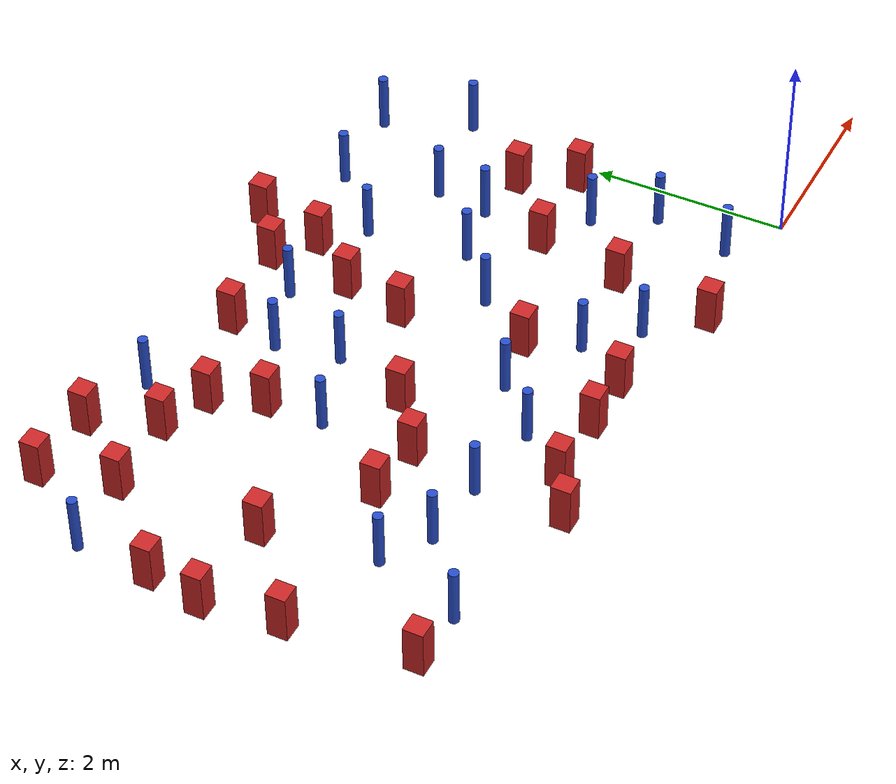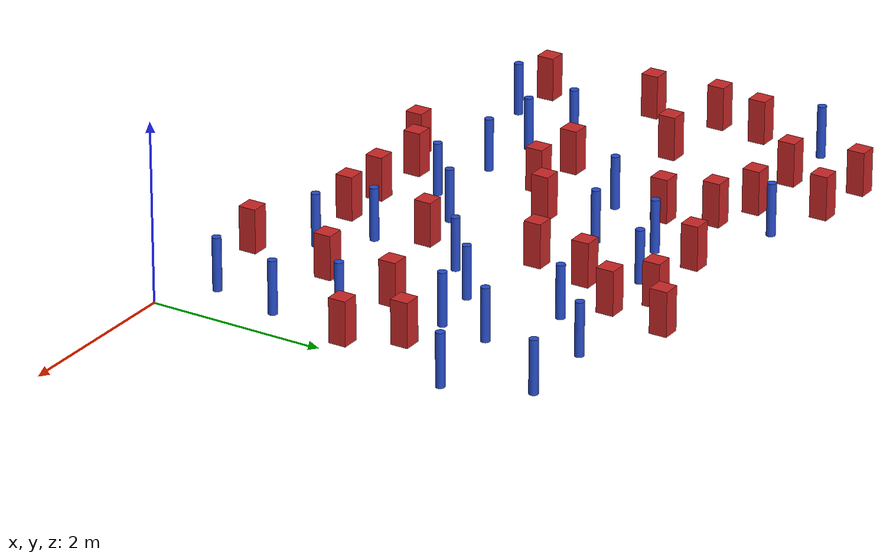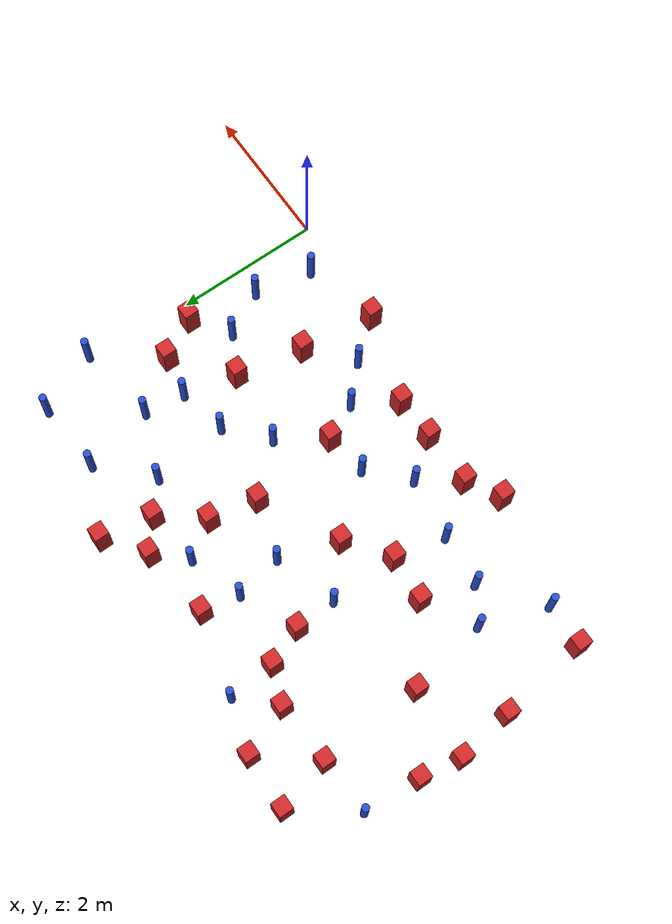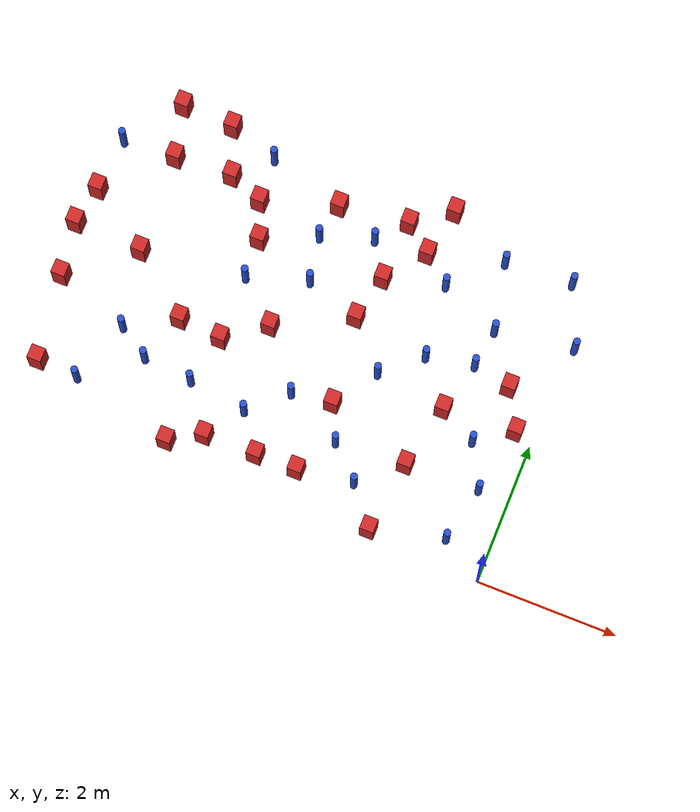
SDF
<sdf version="1.6">
 <model name="dense_65">
  <model name="square_post_obstacle1">
   <static>true</static>
   <pose>-0.560841671599 2.65041663907 8.22691968438e-08 7.2212513382e-06 -7.54495500217e-07 2.29674213826e-05</pose>
   <link name="link">
    <pose>0 0 0.25 0 -0 0</pose>
    <inertial>
     <mass>100</mass>
     <inertia>
      <ixx>0.166667</ixx>
      <ixy>0</ixy>
      <ixz>0</ixz>
      <iyy>0.166667</iyy>
      <iyz>0</iyz>
      <izz>0.166667</izz>
     </inertia>
    </inertial>
    <collision name="collision"><geometry><box><size>.2 .2 .5</size></box></geometry></collision>
    <visual name="visual">
     <geometry><box><size>.2 .2 .5</size></box></geometry>
     <material>
      <script><name>Gazebo/Red</name><uri>file://media/materials/scripts/gazebo.material</uri></script>
     </material>
    </visual>
   </link>
  </model>
  <model name="pole_obstacle8">
   <static>true</static>
   <pose>-2.48331928345 1.05033465094 2.88873142074e-08 -9.90536689395e-09 4.60219949e-07 -1.20965994953e-07</pose>
   <link name="link">
    <pose>0 0 0.3 0 -0 0</pose>
    <inertial>
     <mass>1</mass>
     <inertia><ixx>0.145833</ixx><ixy>0</ixy><ixz>0</ixz><iyy>0.145833</iyy><iyz>0</iyz><izz>0.125</izz></inertia>
    </inertial>
    <collision name="collision">
     <geometry><cylinder><radius>0.05</radius><length>.6</length></cylinder></geometry>
    </collision>
    <visual name="visual">
     <geometry><cylinder><radius>0.05</radius><length>.6</length></cylinder></geometry>
     <material>
      <script><name>Gazebo/Blue</name><uri>file://media/materials/scripts/gazebo.material</uri></script>
     </material>
    </visual>
   </link>
  </model>
  <model name="pole_obstacle9">
   <static>true</static>
   <pose>-3.30076019264 1.46445562812 2.88873142074e-08 -9.90536689395e-09 4.60219949e-07 -1.20965994953e-07</pose>
   <link name="link">
    <pose>0 0 0.3 0 -0 0</pose>
    <inertial>
     <mass>1</mass>
     <inertia><ixx>0.145833</ixx><ixy>0</ixy><ixz>0</ixz><iyy>0.145833</iyy><iyz>0</iyz><izz>0.125</izz></inertia>
    </inertial>
    <collision name="collision">
     <geometry><cylinder><radius>0.05</radius><length>.6</length></cylinder></geometry>
    </collision>
    <visual name="visual">
     <geometry><cylinder><radius>0.05</radius><length>.6</length></cylinder></geometry>
     <material>
      <script><name>Gazebo/Blue</name><uri>file://media/materials/scripts/gazebo.material</uri></script>
     </material>
    </visual>
   </link>
  </model>
  <model name="square_post_obstacle11">
   <static>true</static>
   <pose>-6.88948237772 3.19168750568 8.22691968438e-08 7.2212513382e-06 -7.54495500217e-07 2.29674213826e-05</pose>
   <link name="link">
    <pose>0 0 0.25 0 -0 0</pose>
    <inertial>
     <mass>100</mass>
     <inertia>
      <ixx>0.166667</ixx>
      <ixy>0</ixy>
      <ixz>0</ixz>
      <iyy>0.166667</iyy>
      <iyz>0</iyz>
      <izz>0.166667</izz>
     </inertia>
    </inertial>
    <collision name="collision"><geometry><box><size>.2 .2 .5</size></box></geometry></collision>
    <visual name="visual">
     <geometry><box><size>.2 .2 .5</size></box></geometry>
     <material>
      <script><name>Gazebo/Red</name><uri>file://media/materials/scripts/gazebo.material</uri></script>
     </material>
    </visual>
   </link>
  </model>
  <model name="square_post_obstacle16">
   <static>true</static>
   <pose>-3.680123788 4.19438872389 8.22691968438e-08 7.2212513382e-06 -7.54495500217e-07 2.29674213826e-05</pose>
   <link name="link">
    <pose>0 0 0.25 0 -0 0</pose>
    <inertial>
     <mass>100</mass>
     <inertia>
      <ixx>0.166667</ixx>
      <ixy>0</ixy>
      <ixz>0</ixz>
      <iyy>0.166667</iyy>
      <iyz>0</iyz>
      <izz>0.166667</izz>
     </inertia>
    </inertial>
    <collision name="collision"><geometry><box><size>.2 .2 .5</size></box></geometry></collision>
    <visual name="visual">
     <geometry><box><size>.2 .2 .5</size></box></geometry>
     <material>
      <script><name>Gazebo/Red</name><uri>file://media/materials/scripts/gazebo.material</uri></script>
     </material>
    </visual>
   </link>
  </model>
  <model name="pole_obstacle24">
   <static>true</static>
   <pose>-2.304319869 2.16145580614 2.88873142074e-08 -9.90536690232e-09 4.6021994898e-07 -1.20965994968e-07</pose>
   <link name="link">
    <pose>0 0 0.3 0 -0 0</pose>
    <inertial>
     <mass>1</mass>
     <inertia><ixx>0.145833</ixx><ixy>0</ixy><ixz>0</ixz><iyy>0.145833</iyy><iyz>0</iyz><izz>0.125</izz></inertia>
    </inertial>
    <collision name="collision">
     <geometry><cylinder><radius>0.05</radius><length>.6</length></cylinder></geometry>
    </collision>
    <visual name="visual">
     <geometry><cylinder><radius>0.05</radius><length>.6</length></cylinder></geometry>
     <material>
      <script><name>Gazebo/Blue</name><uri>file://media/materials/scripts/gazebo.material</uri></script>
     </material>
    </visual>
   </link>
  </model>
  <model name="pole_obstacle29">
   <static>true</static>
   <pose>-4.64463714561 1.11420730306 2.88873142074e-08 -9.90536689445e-09 4.60219948999e-07 -1.20965994956e-07</pose>
   <link name="link">
    <pose>0 0 0.3 0 -0 0</pose>
    <inertial>
     <mass>1</mass>
     <inertia><ixx>0.145833</ixx><ixy>0</ixy><ixz>0</ixz><iyy>0.145833</iyy><iyz>0</iyz><izz>0.125</izz></inertia>
    </inertial>
    <collision name="collision">
     <geometry><cylinder><radius>0.05</radius><length>.6</length></cylinder></geometry>
    </collision>
    <visual name="visual">
     <geometry><cylinder><radius>0.05</radius><length>.6</length></cylinder></geometry>
     <material>
      <script><name>Gazebo/Blue</name><uri>file://media/materials/scripts/gazebo.material</uri></script>
     </material>
    </visual>
   </link>
  </model>
  <model name="square_post_obstacle21">
   <static>true</static>
   <pose>-2.83876542974 0.504566178584 8.22691968438e-08 7.2212513382e-06 -7.54495500217e-07 2.29674213826e-05</pose>
   <link name="link">
    <pose>0 0 0.25 0 -0 0</pose>
    <inertial>
     <mass>100</mass>
     <inertia>
      <ixx>0.166667</ixx>
      <ixy>0</ixy>
      <ixz>0</ixz>
      <iyy>0.166667</iyy>
      <iyz>0</iyz>
      <izz>0.166667</izz>
     </inertia>
    </inertial>
    <collision name="collision"><geometry><box><size>.2 .2 .5</size></box></geometry></collision>
    <visual name="visual">
     <geometry><box><size>.2 .2 .5</size></box></geometry>
     <material>
      <script><name>Gazebo/Red</name><uri>file://media/materials/scripts/gazebo.material</uri></script>
     </material>
    </visual>
   </link>
  </model>
  <model name="square_post_obstacle26">
   <static>true</static>
   <pose>-2.87410063419 2.79433971176 8.22691968438e-08 7.2212513382e-06 -7.54495500217e-07 2.29674213826e-05</pose>
   <link name="link">
    <pose>0 0 0.25 0 -0 0</pose>
    <inertial>
     <mass>100</mass>
     <inertia>
      <ixx>0.166667</ixx>
      <ixy>0</ixy>
      <ixz>0</ixz>
      <iyy>0.166667</iyy>
      <iyz>0</iyz>
      <izz>0.166667</izz>
     </inertia>
    </inertial>
    <collision name="collision"><geometry><box><size>.2 .2 .5</size></box></geometry></collision>
    <visual name="visual">
     <geometry><box><size>.2 .2 .5</size></box></geometry>
     <material>
      <script><name>Gazebo/Red</name><uri>file://media/materials/scripts/gazebo.material</uri></script>
     </material>
    </visual>
   </link>
  </model>
  <model name="pole_obstacle33">
   <static>true</static>
   <pose>-1.88882830112 3.67111143473 2.88873142074e-08 -9.90536689791e-09 4.6021994899e-07 -1.20965994959e-07</pose>
   <link name="link">
    <pose>0 0 0.3 0 -0 0</pose>
    <inertial>
     <mass>1</mass>
     <inertia><ixx>0.145833</ixx><ixy>0</ixy><ixz>0</ixz><iyy>0.145833</iyy><iyz>0</iyz><izz>0.125</izz></inertia>
    </inertial>
    <collision name="collision">
     <geometry><cylinder><radius>0.05</radius><length>.6</length></cylinder></geometry>
    </collision>
    <visual name="visual">
     <geometry><cylinder><radius>0.05</radius><length>.6</length></cylinder></geometry>
     <material>
      <script><name>Gazebo/Blue</name><uri>file://media/materials/scripts/gazebo.material</uri></script>
     </material>
    </visual>
   </link>
  </model>
  <model name="square_post_obstacle33">
   <static>true</static>
   <pose>-3.92741275039 2.24414399379 8.22691968438e-08 7.2212513382e-06 -7.54495500217e-07 2.29674213826e-05</pose>
   <link name="link">
    <pose>0 0 0.25 0 -0 0</pose>
    <inertial>
     <mass>100</mass>
     <inertia>
      <ixx>0.166667</ixx>
      <ixy>0</ixy>
      <ixz>0</ixz>
      <iyy>0.166667</iyy>
      <iyz>0</iyz>
      <izz>0.166667</izz>
     </inertia>
    </inertial>
    <collision name="collision"><geometry><box><size>.2 .2 .5</size></box></geometry></collision>
    <visual name="visual">
     <geometry><box><size>.2 .2 .5</size></box></geometry>
     <material>
      <script><name>Gazebo/Red</name><uri>file://media/materials/scripts/gazebo.material</uri></script>
     </material>
    </visual>
   </link>
  </model>
  <model name="square_post_obstacle37">
   <static>true</static>
   <pose>-4.73279522906 3.85065306211 8.22691968438e-08 7.2212513382e-06 -7.54495500217e-07 2.29674213826e-05</pose>
   <link name="link">
    <pose>0 0 0.25 0 -0 0</pose>
    <inertial>
     <mass>100</mass>
     <inertia>
      <ixx>0.166667</ixx>
      <ixy>0</ixy>
      <ixz>0</ixz>
      <iyy>0.166667</iyy>
      <iyz>0</iyz>
      <izz>0.166667</izz>
     </inertia>
    </inertial>
    <collision name="collision"><geometry><box><size>.2 .2 .5</size></box></geometry></collision>
    <visual name="visual">
     <geometry><box><size>.2 .2 .5</size></box></geometry>
     <material>
      <script><name>Gazebo/Red</name><uri>file://media/materials/scripts/gazebo.material</uri></script>
     </material>
    </visual>
   </link>
  </model>
  <model name="pole_obstacle50">
   <static>true</static>
   <pose>-6.83363723945 3.96718415108 2.88873142074e-08 -9.9053669014e-09 4.60219948982e-07 -1.20965994965e-07</pose>
   <link name="link">
    <pose>0 0 0.3 0 -0 0</pose>
    <inertial>
     <mass>1</mass>
     <inertia><ixx>0.145833</ixx><ixy>0</ixy><ixz>0</ixz><iyy>0.145833</iyy><iyz>0</iyz><izz>0.125</izz></inertia>
    </inertial>
    <collision name="collision">
     <geometry><cylinder><radius>0.05</radius><length>.6</length></cylinder></geometry>
    </collision>
    <visual name="visual">
     <geometry><cylinder><radius>0.05</radius><length>.6</length></cylinder></geometry>
     <material>
      <script><name>Gazebo/Blue</name><uri>file://media/materials/scripts/gazebo.material</uri></script>
     </material>
    </visual>
   </link>
  </model>
  <model name="square_post_obstacle46">
   <static>true</static>
   <pose>-5.11732606859 1.87885073688 8.22691968438e-08 7.2212513382e-06 -7.54495500217e-07 2.29674213826e-05</pose>
   <link name="link">
    <pose>0 0 0.25 0 -0 0</pose>
    <inertial>
     <mass>100</mass>
     <inertia>
      <ixx>0.166667</ixx>
      <ixy>0</ixy>
      <ixz>0</ixz>
      <iyy>0.166667</iyy>
      <iyz>0</iyz>
      <izz>0.166667</izz>
     </inertia>
    </inertial>
    <collision name="collision"><geometry><box><size>.2 .2 .5</size></box></geometry></collision>
    <visual name="visual">
     <geometry><box><size>.2 .2 .5</size></box></geometry>
     <material>
      <script><name>Gazebo/Red</name><uri>file://media/materials/scripts/gazebo.material</uri></script>
     </material>
    </visual>
   </link>
  </model>
  <model name="pole_obstacle63">
   <static>true</static>
   <pose>-4.50645721522 2.76461307979 2.88873142074e-08 -9.90536690245e-09 4.6021994898e-07 -1.20965994966e-07</pose>
   <link name="link">
    <pose>0 0 0.3 0 -0 0</pose>
    <inertial>
     <mass>1</mass>
     <inertia><ixx>0.145833</ixx><ixy>0</ixy><ixz>0</ixz><iyy>0.145833</iyy><iyz>0</iyz><izz>0.125</izz></inertia>
    </inertial>
    <collision name="collision">
     <geometry><cylinder><radius>0.05</radius><length>.6</length></cylinder></geometry>
    </collision>
    <visual name="visual">
     <geometry><cylinder><radius>0.05</radius><length>.6</length></cylinder></geometry>
     <material>
      <script><name>Gazebo/Blue</name><uri>file://media/materials/scripts/gazebo.material</uri></script>
     </material>
    </visual>
   </link>
  </model>
  <model name="pole_obstacle65">
   <static>true</static>
   <pose>-1.77916049019 2.62491850262 2.88873142074e-08 -9.90536689791e-09 4.6021994899e-07 -1.20965994959e-07</pose>
   <link name="link">
    <pose>0 0 0.3 0 -0 0</pose>
    <inertial>
     <mass>1</mass>
     <inertia><ixx>0.145833</ixx><ixy>0</ixy><ixz>0</ixz><iyy>0.145833</iyy><iyz>0</iyz><izz>0.125</izz></inertia>
    </inertial>
    <collision name="collision">
     <geometry><cylinder><radius>0.05</radius><length>.6</length></cylinder></geometry>
    </collision>
    <visual name="visual">
     <geometry><cylinder><radius>0.05</radius><length>.6</length></cylinder></geometry>
     <material>
      <script><name>Gazebo/Blue</name><uri>file://media/materials/scripts/gazebo.material</uri></script>
     </material>
    </visual>
   </link>
  </model>
  <model name="pole_obstacle67">
   <static>true</static>
   <pose>-6.11617109913 0.585693611447 2.88873142074e-08 -9.90536689837e-09 4.60219948989e-07 -1.2096599496e-07</pose>
   <link name="link">
    <pose>0 0 0.3 0 -0 0</pose>
    <inertial>
     <mass>1</mass>
     <inertia><ixx>0.145833</ixx><ixy>0</ixy><ixz>0</ixz><iyy>0.145833</iyy><iyz>0</iyz><izz>0.125</izz></inertia>
    </inertial>
    <collision name="collision">
     <geometry><cylinder><radius>0.05</radius><length>.6</length></cylinder></geometry>
    </collision>
    <visual name="visual">
     <geometry><cylinder><radius>0.05</radius><length>.6</length></cylinder></geometry>
     <material>
      <script><name>Gazebo/Blue</name><uri>file://media/materials/scripts/gazebo.material</uri></script>
     </material>
    </visual>
   </link>
  </model>
  <model name="square_post_obstacle56">
   <static>true</static>
   <pose>-6.98311634448 2.62640199725 8.22691968438e-08 7.2212513382e-06 -7.54495500217e-07 2.29674213826e-05</pose>
   <link name="link">
    <pose>0 0 0.25 0 -0 0</pose>
    <inertial>
     <mass>100</mass>
     <inertia>
      <ixx>0.166667</ixx>
      <ixy>0</ixy>
      <ixz>0</ixz>
      <iyy>0.166667</iyy>
      <iyz>0</iyz>
      <izz>0.166667</izz>
     </inertia>
    </inertial>
    <collision name="collision"><geometry><box><size>.2 .2 .5</size></box></geometry></collision>
    <visual name="visual">
     <geometry><box><size>.2 .2 .5</size></box></geometry>
     <material>
      <script><name>Gazebo/Red</name><uri>file://media/materials/scripts/gazebo.material</uri></script>
     </material>
    </visual>
   </link>
  </model>
  <model name="pole_obstacle77">
   <static>true</static>
   <pose>0.0829624721579 3.48288292947 2.88873142074e-08 -9.90536689907e-09 4.60219948988e-07 -1.20965994961e-07</pose>
   <link name="link">
    <pose>0 0 0.3 0 -0 0</pose>
    <inertial>
     <mass>1</mass>
     <inertia><ixx>0.145833</ixx><ixy>0</ixy><ixz>0</ixz><iyy>0.145833</iyy><iyz>0</iyz><izz>0.125</izz></inertia>
    </inertial>
    <collision name="collision">
     <geometry><cylinder><radius>0.05</radius><length>.6</length></cylinder></geometry>
    </collision>
    <visual name="visual">
     <geometry><cylinder><radius>0.05</radius><length>.6</length></cylinder></geometry>
     <material>
      <script><name>Gazebo/Blue</name><uri>file://media/materials/scripts/gazebo.material</uri></script>
     </material>
    </visual>
   </link>
  </model>
  <model name="square_post_obstacle66">
   <static>true</static>
   <pose>-4.49617403517 1.82604715958 8.22691968438e-08 7.2212513382e-06 -7.54495500217e-07 2.29674213826e-05</pose>
   <link name="link">
    <pose>0 0 0.25 0 -0 0</pose>
    <inertial>
     <mass>100</mass>
     <inertia>
      <ixx>0.166667</ixx>
      <ixy>0</ixy>
      <ixz>0</ixz>
      <iyy>0.166667</iyy>
      <iyz>0</iyz>
      <izz>0.166667</izz>
     </inertia>
    </inertial>
    <collision name="collision"><geometry><box><size>.2 .2 .5</size></box></geometry></collision>
    <visual name="visual">
     <geometry><box><size>.2 .2 .5</size></box></geometry>
     <material>
      <script><name>Gazebo/Red</name><uri>file://media/materials/scripts/gazebo.material</uri></script>
     </material>
    </visual>
   </link>
  </model>
  <model name="square_post_obstacle69">
   <static>true</static>
   <pose>-5.48660990155 4.71626903176 8.22691968438e-08 7.22125133819e-06 -7.54495500217e-07 2.29674213826e-05</pose>
   <link name="link">
    <pose>0 0 0.25 0 -0 0</pose>
    <inertial>
     <mass>100</mass>
     <inertia>
      <ixx>0.166667</ixx>
      <ixy>0</ixy>
      <ixz>0</ixz>
      <iyy>0.166667</iyy>
      <iyz>0</iyz>
      <izz>0.166667</izz>
     </inertia>
    </inertial>
    <collision name="collision"><geometry><box><size>.2 .2 .5</size></box></geometry></collision>
    <visual name="visual">
     <geometry><box><size>.2 .2 .5</size></box></geometry>
     <material>
      <script><name>Gazebo/Red</name><uri>file://media/materials/scripts/gazebo.material</uri></script>
     </material>
    </visual>
   </link>
  </model>
  <model name="pole_obstacle81">
   <static>true</static>
   <pose>-5.80731462332 1.47958272403 2.88873142074e-08 -9.90536689445e-09 4.60219948999e-07 -1.20965994956e-07</pose>
   <link name="link">
    <pose>0 0 0.3 0 -0 0</pose>
    <inertial>
     <mass>1</mass>
     <inertia><ixx>0.145833</ixx><ixy>0</ixy><ixz>0</ixz><iyy>0.145833</iyy><iyz>0</iyz><izz>0.125</izz></inertia>
    </inertial>
    <collision name="collision">
     <geometry><cylinder><radius>0.05</radius><length>.6</length></cylinder></geometry>
    </collision>
    <visual name="visual">
     <geometry><cylinder><radius>0.05</radius><length>.6</length></cylinder></geometry>
     <material>
      <script><name>Gazebo/Blue</name><uri>file://media/materials/scripts/gazebo.material</uri></script>
     </material>
    </visual>
   </link>
  </model>
  <model name="square_post_obstacle79">
   <static>true</static>
   <pose>-2.29300067203 4.00698000335 8.22691968438e-08 7.22125133819e-06 -7.54495500217e-07 2.29674213826e-05</pose>
   <link name="link">
    <pose>0 0 0.25 0 -0 0</pose>
    <inertial>
     <mass>100</mass>
     <inertia>
      <ixx>0.166667</ixx>
      <ixy>0</ixy>
      <ixz>0</ixz>
      <iyy>0.166667</iyy>
      <iyz>0</iyz>
      <izz>0.166667</izz>
     </inertia>
    </inertial>
    <collision name="collision"><geometry><box><size>.2 .2 .5</size></box></geometry></collision>
    <visual name="visual">
     <geometry><box><size>.2 .2 .5</size></box></geometry>
     <material>
      <script><name>Gazebo/Red</name><uri>file://media/materials/scripts/gazebo.material</uri></script>
     </material>
    </visual>
   </link>
  </model>
  <model name="pole_obstacle90">
   <static>true</static>
   <pose>-0.271523865402 4.33994678662 2.88873142074e-08 -9.90536689618e-09 4.60219948994e-07 -1.20965994956e-07</pose>
   <link name="link">
    <pose>0 0 0.3 0 -0 0</pose>
    <inertial>
     <mass>1</mass>
     <inertia><ixx>0.145833</ixx><ixy>0</ixy><ixz>0</ixz><iyy>0.145833</iyy><iyz>0</iyz><izz>0.125</izz></inertia>
    </inertial>
    <collision name="collision">
     <geometry><cylinder><radius>0.05</radius><length>.6</length></cylinder></geometry>
    </collision>
    <visual name="visual">
     <geometry><cylinder><radius>0.05</radius><length>.6</length></cylinder></geometry>
     <material>
      <script><name>Gazebo/Blue</name><uri>file://media/materials/scripts/gazebo.material</uri></script>
     </material>
    </visual>
   </link>
  </model>
  <model name="square_post_obstacle86">
   <static>true</static>
   <pose>-5.99710301955 2.5825157316 8.22691968438e-08 7.2212513382e-06 -7.54495500217e-07 2.29674213826e-05</pose>
   <link name="link">
    <pose>0 0 0.25 0 -0 0</pose>
    <inertial>
     <mass>100</mass>
     <inertia>
      <ixx>0.166667</ixx>
      <ixy>0</ixy>
      <ixz>0</ixz>
      <iyy>0.166667</iyy>
      <iyz>0</iyz>
      <izz>0.166667</izz>
     </inertia>
    </inertial>
    <collision name="collision"><geometry><box><size>.2 .2 .5</size></box></geometry></collision>
    <visual name="visual">
     <geometry><box><size>.2 .2 .5</size></box></geometry>
     <material>
      <script><name>Gazebo/Red</name><uri>file://media/materials/scripts/gazebo.material</uri></script>
     </material>
    </visual>
   </link>
  </model>
  <model name="square_post_obstacle87">
   <static>true</static>
   <pose>-6.24336735413 4.74969634615 8.22691968438e-08 7.2212513382e-06 -7.54495500217e-07 2.29674213826e-05</pose>
   <link name="link">
    <pose>0 0 0.25 0 -0 0</pose>
    <inertial>
     <mass>100</mass>
     <inertia>
      <ixx>0.166667</ixx>
      <ixy>0</ixy>
      <ixz>0</ixz>
      <iyy>0.166667</iyy>
      <iyz>0</iyz>
      <izz>0.166667</izz>
     </inertia>
    </inertial>
    <collision name="collision"><geometry><box><size>.2 .2 .5</size></box></geometry></collision>
    <visual name="visual">
     <geometry><box><size>.2 .2 .5</size></box></geometry>
     <material>
      <script><name>Gazebo/Red</name><uri>file://media/materials/scripts/gazebo.material</uri></script>
     </material>
    </visual>
   </link>
  </model>
  <model name="pole_obstacle99">
   <static>true</static>
   <pose>-0.596337712867 0.363008030687 2.88873142074e-08 -9.90536689558e-09 4.60219948996e-07 -1.20965994957e-07</pose>
   <link name="link">
    <pose>0 0 0.3 0 -0 0</pose>
    <inertial>
     <mass>1</mass>
     <inertia><ixx>0.145833</ixx><ixy>0</ixy><ixz>0</ixz><iyy>0.145833</iyy><iyz>0</iyz><izz>0.125</izz></inertia>
    </inertial>
    <collision name="collision">
     <geometry><cylinder><radius>0.05</radius><length>.6</length></cylinder></geometry>
    </collision>
    <visual name="visual">
     <geometry><cylinder><radius>0.05</radius><length>.6</length></cylinder></geometry>
     <material>
      <script><name>Gazebo/Blue</name><uri>file://media/materials/scripts/gazebo.material</uri></script>
     </material>
    </visual>
   </link>
  </model>
  <model name="square_post_obstacle95">
   <static>true</static>
   <pose>-6.70617805163 0.626951596238 8.22691968438e-08 7.2212513382e-06 -7.54495500217e-07 2.29674213826e-05</pose>
   <link name="link">
    <pose>0 0 0.25 0 -0 0</pose>
    <inertial>
     <mass>100</mass>
     <inertia>
      <ixx>0.166667</ixx>
      <ixy>0</ixy>
      <ixz>0</ixz>
      <iyy>0.166667</iyy>
      <iyz>0</iyz>
      <izz>0.166667</izz>
     </inertia>
    </inertial>
    <collision name="collision"><geometry><box><size>.2 .2 .5</size></box></geometry></collision>
    <visual name="visual">
     <geometry><box><size>.2 .2 .5</size></box></geometry>
     <material>
      <script><name>Gazebo/Red</name><uri>file://media/materials/scripts/gazebo.material</uri></script>
     </material>
    </visual>
   </link>
  </model>
  <model name="pole_obstacle106">
   <static>true</static>
   <pose>-0.753810290325 1.74890264447 2.88873142074e-08 -9.90536689855e-09 4.60219948989e-07 -1.20965994962e-07</pose>
   <link name="link">
    <pose>0 0 0.3 0 -0 0</pose>
    <inertial>
     <mass>1</mass>
     <inertia><ixx>0.145833</ixx><ixy>0</ixy><ixz>0</ixz><iyy>0.145833</iyy><iyz>0</iyz><izz>0.125</izz></inertia>
    </inertial>
    <collision name="collision">
     <geometry><cylinder><radius>0.05</radius><length>.6</length></cylinder></geometry>
    </collision>
    <visual name="visual">
     <geometry><cylinder><radius>0.05</radius><length>.6</length></cylinder></geometry>
     <material>
      <script><name>Gazebo/Blue</name><uri>file://media/materials/scripts/gazebo.material</uri></script>
     </material>
    </visual>
   </link>
  </model>
  <model name="pole_obstacle107">
   <static>true</static>
   <pose>-5.35539447719 1.17975356388 2.88873142074e-08 -9.90536689445e-09 4.60219948999e-07 -1.20965994956e-07</pose>
   <link name="link">
    <pose>0 0 0.3 0 -0 0</pose>
    <inertial>
     <mass>1</mass>
     <inertia><ixx>0.145833</ixx><ixy>0</ixy><ixz>0</ixz><iyy>0.145833</iyy><iyz>0</iyz><izz>0.125</izz></inertia>
    </inertial>
    <collision name="collision">
     <geometry><cylinder><radius>0.05</radius><length>.6</length></cylinder></geometry>
    </collision>
    <visual name="visual">
     <geometry><cylinder><radius>0.05</radius><length>.6</length></cylinder></geometry>
     <material>
      <script><name>Gazebo/Blue</name><uri>file://media/materials/scripts/gazebo.material</uri></script>
     </material>
    </visual>
   </link>
  </model>
  <model name="square_post_obstacle108">
   <static>true</static>
   <pose>-1.29280418347 2.03772372093 8.22691968438e-08 7.2212513382e-06 -7.54495500217e-07 2.29674213826e-05</pose>
   <link name="link">
    <pose>0 0 0.25 0 -0 0</pose>
    <inertial>
     <mass>100</mass>
     <inertia>
      <ixx>0.166667</ixx>
      <ixy>0</ixy>
      <ixz>0</ixz>
      <iyy>0.166667</iyy>
      <iyz>0</iyz>
      <izz>0.166667</izz>
     </inertia>
    </inertial>
    <collision name="collision"><geometry><box><size>.2 .2 .5</size></box></geometry></collision>
    <visual name="visual">
     <geometry><box><size>.2 .2 .5</size></box></geometry>
     <material>
      <script><name>Gazebo/Red</name><uri>file://media/materials/scripts/gazebo.material</uri></script>
     </material>
    </visual>
   </link>
  </model>
  <model name="pole_obstacle116">
   <static>true</static>
   <pose>-3.04149800342 3.92216286845 2.88873142074e-08 -9.90536689597e-09 4.60219948995e-07 -1.20965994957e-07</pose>
   <link name="link">
    <pose>0 0 0.3 0 -0 0</pose>
    <inertial>
     <mass>1</mass>
     <inertia><ixx>0.145833</ixx><ixy>0</ixy><ixz>0</ixz><iyy>0.145833</iyy><iyz>0</iyz><izz>0.125</izz></inertia>
    </inertial>
    <collision name="collision">
     <geometry><cylinder><radius>0.05</radius><length>.6</length></cylinder></geometry>
    </collision>
    <visual name="visual">
     <geometry><cylinder><radius>0.05</radius><length>.6</length></cylinder></geometry>
     <material>
      <script><name>Gazebo/Blue</name><uri>file://media/materials/scripts/gazebo.material</uri></script>
     </material>
    </visual>
   </link>
  </model>
  <model name="square_post_obstacle116">
   <static>true</static>
   <pose>-5.22801478074 4.05010147433 8.22691968438e-08 7.22125133819e-06 -7.54495500217e-07 2.29674213826e-05</pose>
   <link name="link">
    <pose>0 0 0.25 0 -0 0</pose>
    <inertial>
     <mass>100</mass>
     <inertia>
      <ixx>0.166667</ixx>
      <ixy>0</ixy>
      <ixz>0</ixz>
      <iyy>0.166667</iyy>
      <iyz>0</iyz>
      <izz>0.166667</izz>
     </inertia>
    </inertial>
    <collision name="collision"><geometry><box><size>.2 .2 .5</size></box></geometry></collision>
    <visual name="visual">
     <geometry><box><size>.2 .2 .5</size></box></geometry>
     <material>
      <script><name>Gazebo/Red</name><uri>file://media/materials/scripts/gazebo.material</uri></script>
     </material>
    </visual>
   </link>
  </model>
  <model name="square_post_obstacle128">
   <static>true</static>
   <pose>-2.1533951759 4.71017432588 8.22691968438e-08 7.2212513382e-06 -7.54495500217e-07 2.29674213826e-05</pose>
   <link name="link">
    <pose>0 0 0.25 0 -0 0</pose>
    <inertial>
     <mass>100</mass>
     <inertia>
      <ixx>0.166667</ixx>
      <ixy>0</ixy>
      <ixz>0</ixz>
      <iyy>0.166667</iyy>
      <iyz>0</iyz>
      <izz>0.166667</izz>
     </inertia>
    </inertial>
    <collision name="collision"><geometry><box><size>.2 .2 .5</size></box></geometry></collision>
    <visual name="visual">
     <geometry><box><size>.2 .2 .5</size></box></geometry>
     <material>
      <script><name>Gazebo/Red</name><uri>file://media/materials/scripts/gazebo.material</uri></script>
     </material>
    </visual>
   </link>
  </model>
  <model name="square_post_obstacle130">
   <static>true</static>
   <pose>-6.87564008628 1.85827465387 8.22691968438e-08 7.2212513382e-06 -7.54495500217e-07 2.29674213826e-05</pose>
   <link name="link">
    <pose>0 0 0.25 0 -0 0</pose>
    <inertial>
     <mass>100</mass>
     <inertia>
      <ixx>0.166667</ixx>
      <ixy>0</ixy>
      <ixz>0</ixz>
      <iyy>0.166667</iyy>
      <iyz>0</iyz>
      <izz>0.166667</izz>
     </inertia>
    </inertial>
    <collision name="collision"><geometry><box><size>.2 .2 .5</size></box></geometry></collision>
    <visual name="visual">
     <geometry><box><size>.2 .2 .5</size></box></geometry>
     <material>
      <script><name>Gazebo/Red</name><uri>file://media/materials/scripts/gazebo.material</uri></script>
     </material>
    </visual>
   </link>
  </model>
  <model name="pole_obstacle136">
   <static>true</static>
   <pose>-0.432453640294 1.1540847777 2.88873142074e-08 -9.90536689905e-09 4.60219948988e-07 -1.2096599496e-07</pose>
   <link name="link">
    <pose>0 0 0.3 0 -0 0</pose>
    <inertial>
     <mass>1</mass>
     <inertia><ixx>0.145833</ixx><ixy>0</ixy><ixz>0</ixz><iyy>0.145833</iyy><iyz>0</iyz><izz>0.125</izz></inertia>
    </inertial>
    <collision name="collision">
     <geometry><cylinder><radius>0.05</radius><length>.6</length></cylinder></geometry>
    </collision>
    <visual name="visual">
     <geometry><cylinder><radius>0.05</radius><length>.6</length></cylinder></geometry>
     <material>
      <script><name>Gazebo/Blue</name><uri>file://media/materials/scripts/gazebo.material</uri></script>
     </material>
    </visual>
   </link>
  </model>
  <model name="square_post_obstacle133">
   <static>true</static>
   <pose>-2.72436295108 1.55125231874 8.22691968438e-08 7.2212513382e-06 -7.54495500217e-07 2.29674213826e-05</pose>
   <link name="link">
    <pose>0 0 0.25 0 -0 0</pose>
    <inertial>
     <mass>100</mass>
     <inertia>
      <ixx>0.166667</ixx>
      <ixy>0</ixy>
      <ixz>0</ixz>
      <iyy>0.166667</iyy>
      <iyz>0</iyz>
      <izz>0.166667</izz>
     </inertia>
    </inertial>
    <collision name="collision"><geometry><box><size>.2 .2 .5</size></box></geometry></collision>
    <visual name="visual">
     <geometry><box><size>.2 .2 .5</size></box></geometry>
     <material>
      <script><name>Gazebo/Red</name><uri>file://media/materials/scripts/gazebo.material</uri></script>
     </material>
    </visual>
   </link>
  </model>
  <model name="square_post_obstacle134">
   <static>true</static>
   <pose>-1.48688407146 1.12268765484 8.22691968438e-08 7.2212513382e-06 -7.54495500217e-07 2.29674213826e-05</pose>
   <link name="link">
    <pose>0 0 0.25 0 -0 0</pose>
    <inertial>
     <mass>100</mass>
     <inertia>
      <ixx>0.166667</ixx>
      <ixy>0</ixy>
      <ixz>0</ixz>
      <iyy>0.166667</iyy>
      <iyz>0</iyz>
      <izz>0.166667</izz>
     </inertia>
    </inertial>
    <collision name="collision"><geometry><box><size>.2 .2 .5</size></box></geometry></collision>
    <visual name="visual">
     <geometry><box><size>.2 .2 .5</size></box></geometry>
     <material>
      <script><name>Gazebo/Red</name><uri>file://media/materials/scripts/gazebo.material</uri></script>
     </material>
    </visual>
   </link>
  </model>
  <model name="pole_obstacle143">
   <static>true</static>
   <pose>-4.77351095038 4.49569341878 2.88873142074e-08 -9.90536690842e-09 4.60219948965e-07 -1.20965994976e-07</pose>
   <link name="link">
    <pose>0 0 0.3 0 -0 0</pose>
    <inertial>
     <mass>1</mass>
     <inertia><ixx>0.145833</ixx><ixy>0</ixy><ixz>0</ixz><iyy>0.145833</iyy><iyz>0</iyz><izz>0.125</izz></inertia>
    </inertial>
    <collision name="collision">
     <geometry><cylinder><radius>0.05</radius><length>.6</length></cylinder></geometry>
    </collision>
    <visual name="visual">
     <geometry><cylinder><radius>0.05</radius><length>.6</length></cylinder></geometry>
     <material>
      <script><name>Gazebo/Blue</name><uri>file://media/materials/scripts/gazebo.material</uri></script>
     </material>
    </visual>
   </link>
  </model>
  <model name="pole_obstacle147">
   <static>true</static>
   <pose>-3.77102022664 3.67886481235 2.88873142074e-08 -9.90536690232e-09 4.6021994898e-07 -1.20965994968e-07</pose>
   <link name="link">
    <pose>0 0 0.3 0 -0 0</pose>
    <inertial>
     <mass>1</mass>
     <inertia><ixx>0.145833</ixx><ixy>0</ixy><ixz>0</ixz><iyy>0.145833</iyy><iyz>0</iyz><izz>0.125</izz></inertia>
    </inertial>
    <collision name="collision">
     <geometry><cylinder><radius>0.05</radius><length>.6</length></cylinder></geometry>
    </collision>
    <visual name="visual">
     <geometry><cylinder><radius>0.05</radius><length>.6</length></cylinder></geometry>
     <material>
      <script><name>Gazebo/Blue</name><uri>file://media/materials/scripts/gazebo.material</uri></script>
     </material>
    </visual>
   </link>
  </model>
  <model name="square_post_obstacle142">
   <static>true</static>
   <pose>-4.53275734865 3.3375562907 8.22691968438e-08 7.2212513382e-06 -7.54495500217e-07 2.29674213826e-05</pose>
   <link name="link">
    <pose>0 0 0.25 0 -0 0</pose>
    <inertial>
     <mass>100</mass>
     <inertia>
      <ixx>0.166667</ixx>
      <ixy>0</ixy>
      <ixz>0</ixz>
      <iyy>0.166667</iyy>
      <iyz>0</iyz>
      <izz>0.166667</izz>
     </inertia>
    </inertial>
    <collision name="collision"><geometry><box><size>.2 .2 .5</size></box></geometry></collision>
    <visual name="visual">
     <geometry><box><size>.2 .2 .5</size></box></geometry>
     <material>
      <script><name>Gazebo/Red</name><uri>file://media/materials/scripts/gazebo.material</uri></script>
     </material>
    </visual>
   </link>
  </model>
  <model name="pole_obstacle157">
   <static>true</static>
   <pose>-3.65257375494 3.03381276744 2.88873142074e-08 -9.90536690232e-09 4.6021994898e-07 -1.20965994968e-07</pose>
   <link name="link">
    <pose>0 0 0.3 0 -0 0</pose>
    <inertial>
     <mass>1</mass>
     <inertia><ixx>0.145833</ixx><ixy>0</ixy><ixz>0</ixz><iyy>0.145833</iyy><iyz>0</iyz><izz>0.125</izz></inertia>
    </inertial>
    <collision name="collision">
     <geometry><cylinder><radius>0.05</radius><length>.6</length></cylinder></geometry>
    </collision>
    <visual name="visual">
     <geometry><cylinder><radius>0.05</radius><length>.6</length></cylinder></geometry>
     <material>
      <script><name>Gazebo/Blue</name><uri>file://media/materials/scripts/gazebo.material</uri></script>
     </material>
    </visual>
   </link>
  </model>
  <model name="square_post_obstacle153">
   <static>true</static>
   <pose>-2.73536641368 3.4495726755 8.22691968438e-08 7.2212513382e-06 -7.54495500217e-07 2.29674213826e-05</pose>
   <link name="link">
    <pose>0 0 0.25 0 -0 0</pose>
    <inertial>
     <mass>100</mass>
     <inertia>
      <ixx>0.166667</ixx>
      <ixy>0</ixy>
      <ixz>0</ixz>
      <iyy>0.166667</iyy>
      <iyz>0</iyz>
      <izz>0.166667</izz>
     </inertia>
    </inertial>
    <collision name="collision"><geometry><box><size>.2 .2 .5</size></box></geometry></collision>
    <visual name="visual">
     <geometry><box><size>.2 .2 .5</size></box></geometry>
     <material>
      <script><name>Gazebo/Red</name><uri>file://media/materials/scripts/gazebo.material</uri></script>
     </material>
    </visual>
   </link>
  </model>
  <model name="pole_obstacle161">
   <static>true</static>
   <pose>-1.03109139466 3.31322014827 2.88873142074e-08 -9.90536689693e-09 4.60219948993e-07 -1.20965994958e-07</pose>
   <link name="link">
    <pose>0 0 0.3 0 -0 0</pose>
    <inertial>
     <mass>1</mass>
     <inertia><ixx>0.145833</ixx><ixy>0</ixy><ixz>0</ixz><iyy>0.145833</iyy><iyz>0</iyz><izz>0.125</izz></inertia>
    </inertial>
    <collision name="collision">
     <geometry><cylinder><radius>0.05</radius><length>.6</length></cylinder></geometry>
    </collision>
    <visual name="visual">
     <geometry><cylinder><radius>0.05</radius><length>.6</length></cylinder></geometry>
     <material>
      <script><name>Gazebo/Blue</name><uri>file://media/materials/scripts/gazebo.material</uri></script>
     </material>
    </visual>
   </link>
  </model>
  <model name="square_post_obstacle158">
   <static>true</static>
   <pose>-0.2628360797 2.10714304515 8.22691968438e-08 7.2212513382e-06 -7.54495500217e-07 2.29674213826e-05</pose>
   <link name="link">
    <pose>0 0 0.25 0 -0 0</pose>
    <inertial>
     <mass>100</mass>
     <inertia>
      <ixx>0.166667</ixx>
      <ixy>0</ixy>
      <ixz>0</ixz>
      <iyy>0.166667</iyy>
      <iyz>0</iyz>
      <izz>0.166667</izz>
     </inertia>
    </inertial>
    <collision name="collision"><geometry><box><size>.2 .2 .5</size></box></geometry></collision>
    <visual name="visual">
     <geometry><box><size>.2 .2 .5</size></box></geometry>
     <material>
      <script><name>Gazebo/Red</name><uri>file://media/materials/scripts/gazebo.material</uri></script>
     </material>
    </visual>
   </link>
  </model>
  <model name="square_post_obstacle165">
   <static>true</static>
   <pose>-4.18448421337 0.48690888947 8.22691968438e-08 7.2212513382e-06 -7.54495500217e-07 2.29674213826e-05</pose>
   <link name="link">
    <pose>0 0 0.25 0 -0 0</pose>
    <inertial>
     <mass>100</mass>
     <inertia>
      <ixx>0.166667</ixx>
      <ixy>0</ixy>
      <ixz>0</ixz>
      <iyy>0.166667</iyy>
      <iyz>0</iyz>
      <izz>0.166667</izz>
     </inertia>
    </inertial>
    <collision name="collision"><geometry><box><size>.2 .2 .5</size></box></geometry></collision>
    <visual name="visual">
     <geometry><box><size>.2 .2 .5</size></box></geometry>
     <material>
      <script><name>Gazebo/Red</name><uri>file://media/materials/scripts/gazebo.material</uri></script>
     </material>
    </visual>
   </link>
  </model>
  <model name="square_post_obstacle171">
   <static>true</static>
   <pose>-1.62328031489 0.103704976673 8.22691968438e-08 7.2212513382e-06 -7.54495500217e-07 2.29674213826e-05</pose>
   <link name="link">
    <pose>0 0 0.25 0 -0 0</pose>
    <inertial>
     <mass>100</mass>
     <inertia>
      <ixx>0.166667</ixx>
      <ixy>0</ixy>
      <ixz>0</ixz>
      <iyy>0.166667</iyy>
      <iyz>0</iyz>
      <izz>0.166667</izz>
     </inertia>
    </inertial>
    <collision name="collision"><geometry><box><size>.2 .2 .5</size></box></geometry></collision>
    <visual name="visual">
     <geometry><box><size>.2 .2 .5</size></box></geometry>
     <material>
      <script><name>Gazebo/Red</name><uri>file://media/materials/scripts/gazebo.material</uri></script>
     </material>
    </visual>
   </link>
  </model>
  <model name="pole_obstacle174">
   <static>true</static>
   <pose>-1.24285994973 4.28121971793 2.88873142074e-08 -9.90536689852e-09 4.60219948989e-07 -1.2096599496e-07</pose>
   <link name="link">
    <pose>0 0 0.3 0 -0 0</pose>
    <inertial>
     <mass>1</mass>
     <inertia><ixx>0.145833</ixx><ixy>0</ixy><ixz>0</ixz><iyy>0.145833</iyy><iyz>0</iyz><izz>0.125</izz></inertia>
    </inertial>
    <collision name="collision">
     <geometry><cylinder><radius>0.05</radius><length>.6</length></cylinder></geometry>
    </collision>
    <visual name="visual">
     <geometry><cylinder><radius>0.05</radius><length>.6</length></cylinder></geometry>
     <material>
      <script><name>Gazebo/Blue</name><uri>file://media/materials/scripts/gazebo.material</uri></script>
     </material>
    </visual>
   </link>
  </model>
  <model name="square_post_obstacle195">
   <static>true</static>
   <pose>-4.63778331404 0.225477972786 8.22691968438e-08 7.2212513382e-06 -7.54495500217e-07 2.29674213826e-05</pose>
   <link name="link">
    <pose>0 0 0.25 0 -0 0</pose>
    <inertial>
     <mass>100</mass>
     <inertia>
      <ixx>0.166667</ixx>
      <ixy>0</ixy>
      <ixz>0</ixz>
      <iyy>0.166667</iyy>
      <iyz>0</iyz>
      <izz>0.166667</izz>
     </inertia>
    </inertial>
    <collision name="collision"><geometry><box><size>.2 .2 .5</size></box></geometry></collision>
    <visual name="visual">
     <geometry><box><size>.2 .2 .5</size></box></geometry>
     <material>
      <script><name>Gazebo/Red</name><uri>file://media/materials/scripts/gazebo.material</uri></script>
     </material>
    </visual>
   </link>
  </model>
  <model name="square_post_obstacle200">
   <static>true</static>
   <pose>-6.06505873199 4.00905767104 8.22691968438e-08 7.22125133819e-06 -7.54495500217e-07 2.29674213826e-05</pose>
   <link name="link">
    <pose>0 0 0.25 0 -0 0</pose>
    <inertial>
     <mass>100</mass>
     <inertia>
      <ixx>0.166667</ixx>
      <ixy>0</ixy>
      <ixz>0</ixz>
      <iyy>0.166667</iyy>
      <iyz>0</iyz>
      <izz>0.166667</izz>
     </inertia>
    </inertial>
    <collision name="collision"><geometry><box><size>.2 .2 .5</size></box></geometry></collision>
    <visual name="visual">
     <geometry><box><size>.2 .2 .5</size></box></geometry>
     <material>
      <script><name>Gazebo/Red</name><uri>file://media/materials/scripts/gazebo.material</uri></script>
     </material>
    </visual>
   </link>
  </model>
  <model name="square_post_obstacle204">
   <static>true</static>
   <pose>-2.68510115112 4.31787465376 8.22691968438e-08 7.2212513382e-06 -7.54495500217e-07 2.29674213826e-05</pose>
   <link name="link">
    <pose>0 0 0.25 0 -0 0</pose>
    <inertial>
     <mass>100</mass>
     <inertia>
      <ixx>0.166667</ixx>
      <ixy>0</ixy>
      <ixz>0</ixz>
      <iyy>0.166667</iyy>
      <iyz>0</iyz>
      <izz>0.166667</izz>
     </inertia>
    </inertial>
    <collision name="collision"><geometry><box><size>.2 .2 .5</size></box></geometry></collision>
    <visual name="visual">
     <geometry><box><size>.2 .2 .5</size></box></geometry>
     <material>
      <script><name>Gazebo/Red</name><uri>file://media/materials/scripts/gazebo.material</uri></script>
     </material>
    </visual>
   </link>
  </model>
  <model name="pole_obstacle194">
   <static>true</static>
   <pose>-1.10588597011 2.75732080171 2.88873142074e-08 -9.90536689791e-09 4.6021994899e-07 -1.20965994959e-07</pose>
   <link name="link">
    <pose>0 0 0.3 0 -0 0</pose>
    <inertial>
     <mass>1</mass>
     <inertia><ixx>0.145833</ixx><ixy>0</ixy><ixz>0</ixz><iyy>0.145833</iyy><iyz>0</iyz><izz>0.125</izz></inertia>
    </inertial>
    <collision name="collision">
     <geometry><cylinder><radius>0.05</radius><length>.6</length></cylinder></geometry>
    </collision>
    <visual name="visual">
     <geometry><cylinder><radius>0.05</radius><length>.6</length></cylinder></geometry>
     <material>
      <script><name>Gazebo/Blue</name><uri>file://media/materials/scripts/gazebo.material</uri></script>
     </material>
    </visual>
   </link>
  </model>
  <model name="pole_obstacle203">
   <static>true</static>
   <pose>-2.04124917458 0.614793986782 2.88873142074e-08 -9.90536689755e-09 4.60219948991e-07 -1.2096599496e-07</pose>
   <link name="link">
    <pose>0 0 0.3 0 -0 0</pose>
    <inertial>
     <mass>1</mass>
     <inertia><ixx>0.145833</ixx><ixy>0</ixy><ixz>0</ixz><iyy>0.145833</iyy><iyz>0</iyz><izz>0.125</izz></inertia>
    </inertial>
    <collision name="collision">
     <geometry><cylinder><radius>0.05</radius><length>.6</length></cylinder></geometry>
    </collision>
    <visual name="visual">
     <geometry><cylinder><radius>0.05</radius><length>.6</length></cylinder></geometry>
     <material>
      <script><name>Gazebo/Blue</name><uri>file://media/materials/scripts/gazebo.material</uri></script>
     </material>
    </visual>
   </link>
  </model>
  <model name="pole_obstacle204">
   <static>true</static>
   <pose>-3.80733318157 0.993251481524 2.88873142074e-08 -9.90536687568e-09 4.60219949041e-07 -1.2096599494e-07</pose>
   <link name="link">
    <pose>0 0 0.3 0 -0 0</pose>
    <inertial>
     <mass>1</mass>
     <inertia><ixx>0.145833</ixx><ixy>0</ixy><ixz>0</ixz><iyy>0.145833</iyy><iyz>0</iyz><izz>0.125</izz></inertia>
    </inertial>
    <collision name="collision">
     <geometry><cylinder><radius>0.05</radius><length>.6</length></cylinder></geometry>
    </collision>
    <visual name="visual">
     <geometry><cylinder><radius>0.05</radius><length>.6</length></cylinder></geometry>
     <material>
      <script><name>Gazebo/Blue</name><uri>file://media/materials/scripts/gazebo.material</uri></script>
     </material>
    </visual>
   </link>
  </model>
  <model name="square_post_obstacle233">
   <static>true</static>
   <pose>-3.43252996738 0.494603964659 8.22691968438e-08 7.22125133819e-06 -7.54495500217e-07 2.29674213826e-05</pose>
   <link name="link">
    <pose>0 0 0.25 0 -0 0</pose>
    <inertial>
     <mass>100</mass>
     <inertia>
      <ixx>0.166667</ixx>
      <ixy>0</ixy>
      <ixz>0</ixz>
      <iyy>0.166667</iyy>
      <iyz>0</iyz>
      <izz>0.166667</izz>
     </inertia>
    </inertial>
    <collision name="collision"><geometry><box><size>.2 .2 .5</size></box></geometry></collision>
    <visual name="visual">
     <geometry><box><size>.2 .2 .5</size></box></geometry>
     <material>
      <script><name>Gazebo/Red</name><uri>file://media/materials/scripts/gazebo.material</uri></script>
     </material>
    </visual>
   </link>
  </model>
 </model>
</sdf>
